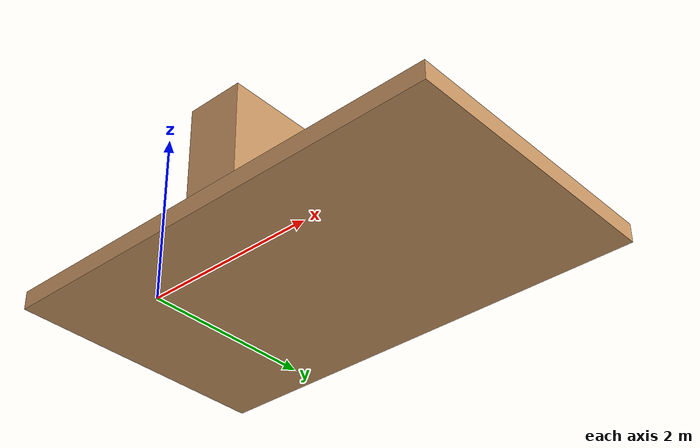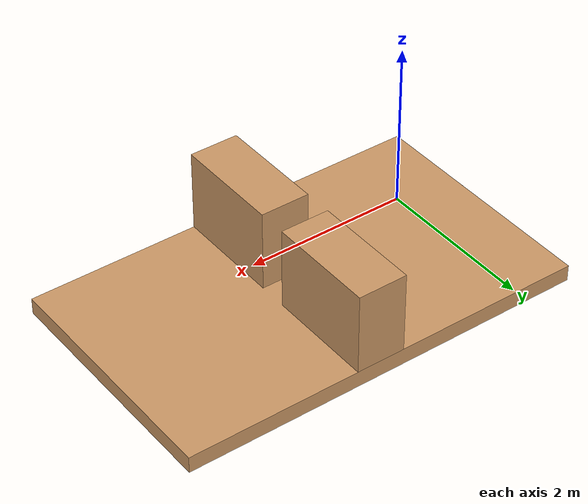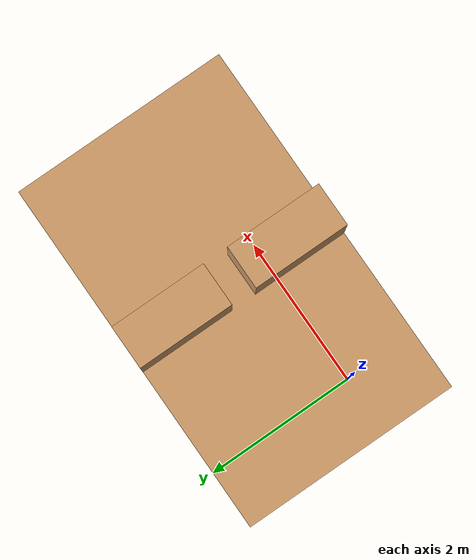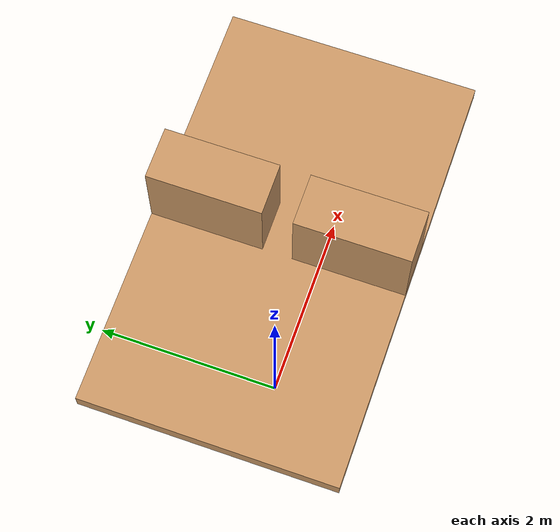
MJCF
<mujoco model="test_box_rock_fissure_terrain">
  <asset>
    <mesh name="test_box_rock_fissure_terrain_mesh0" file="meshs/test_box_rock_fissure_terrain_mesh0.stl"/>
    <mesh name="test_box_rock_fissure_terrain_mesh1" file="meshs/test_box_rock_fissure_terrain_mesh1.stl"/>
    <mesh name="test_box_rock_fissure_terrain_mesh2" file="meshs/test_box_rock_fissure_terrain_mesh2.stl"/>
  </asset>
  <worldbody>
    <geom type="mesh" mesh="test_box_rock_fissure_terrain_mesh0" rgba="0.8 0.6 0.4 1" pos="-0.8 -1.0 -0.05" contype="1" conaffinity="1" group="1"/>
    <geom type="mesh" mesh="test_box_rock_fissure_terrain_mesh1" rgba="0.8 0.6 0.4 1" pos="-0.8 -1.0 -0.05" contype="1" conaffinity="1" group="1"/>
    <geom type="mesh" mesh="test_box_rock_fissure_terrain_mesh2" rgba="0.8 0.6 0.4 1" pos="-0.8 -1.0 -0.05" contype="1" conaffinity="1" group="1"/>
  </worldbody>
  <custom>
    <text name="terrain:test_box_rock_fissure_terrain" data="difficulty:0.933962798936502"/>
    <text name="terrain_key_pos0:init" data="0.0 0.0 -0.05"/>
    <text name="terrain_key_pos1:rock_fissure_edge" data="1.3999999999999997 0.0 -0.05"/>
    <text name="terrain_key_pos2:rock_fissure_edge turn" data="1.4999999999999998 0.0 -0.05"/>
    <text name="terrain_key_pos3:rock_fissure_edge enter" data="1.5999999999999999 0.0 -0.05"/>
    <text name="terrain_key_pos4:rock_fissure_edge turn" data="1.7999999999999996 0.0 -0.05"/>
    <text name="terrain_key_pos5:rock_fissure_edge exit" data="1.7999999999999996 0.0 -0.05"/>
    <text name="terrain_key_pos6:end" data="1.8999999999999997 0.0 -0.05"/>
  </custom>
</mujoco>
